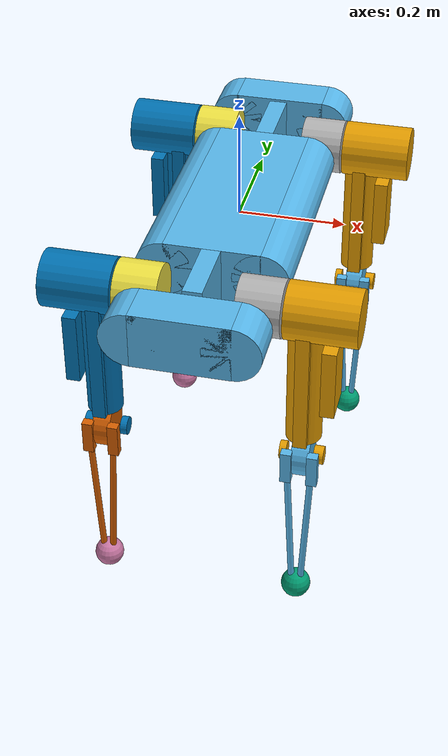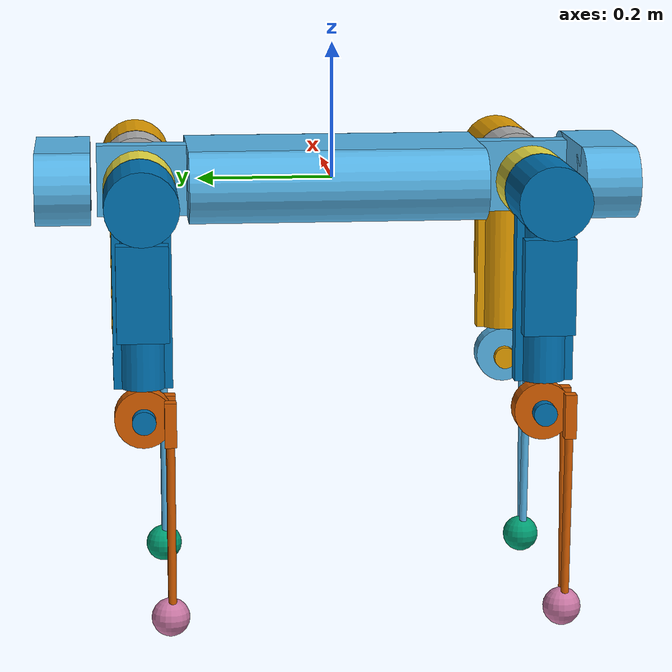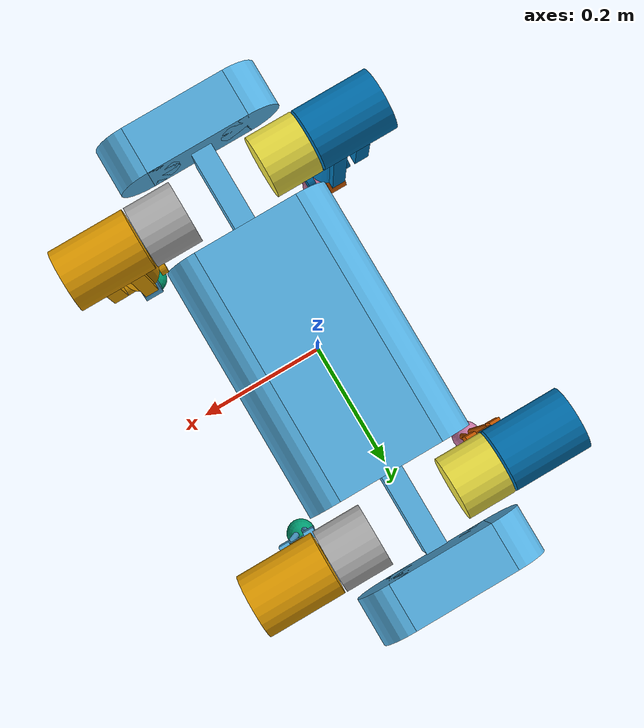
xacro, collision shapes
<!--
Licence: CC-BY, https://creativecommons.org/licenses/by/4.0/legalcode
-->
<?xml version="1.0"?>
<robot name="dogbot" xmlns:xacro="http://ros.org/wiki/xacro">

  <xacro:property name="collisionmesh" value="false" />

  <xacro:property name="bodyheight" value="0.105" />
  <xacro:property name="bodywidth" value="0.282" />
  <xacro:property name="bodylen" value="0.865" />

  <xacro:property name="hipoffsetside" value="0.088" /><!-- offset from body centreline to hip roll -->
  <xacro:property name="hipoffset" value="0.2875" /><!-- offset from body midpoint front/back to hip, axis-to-axis is 575mm -->
  <xacro:property name="legoffsetside" value="0.18675" /><!-- from centreline to centre/origin of upper leg -->
  <xacro:property name="upperleglen" value="0.315" />
  <xacro:property name="lowerleglen" value="0.3" />

  <xacro:property name="kp" value="1000000" />
  <xacro:property name="kd" value="1.0" />
  <!-- degrees to radians -->
  <xacro:property name="d2rad" value="0.017453" />

  <material name="blue">
    <color rgba="0 0 0.8 1"/>
  </material>

  <material name="black">
    <color rgba="0 0 0 1"/>
  </material>

  <material name="white">
    <color rgba="1 1 1 1"/>
  </material>

  <material name="dogbotred">
    <color rgba="1 0 0 1"/>
  </material>

  <material name="dogbotgray">
    <color rgba="0.7 0.7 0.7 1"/>
  </material>

  <!-- Approximate mass distribution with a box
  set ifactor=1 for solid box, =2.0 for a thin shell -->
  <xacro:macro name="default_inertial" params="mass xSize ySize zSize x:=0 y:=0 z:=0 ifactor:=1.0">
    <inertial>
      <mass value="${mass}" />
      <origin xyz="${x} ${y} ${z}" rpy="0 0 0" />
      <inertia
        ixx="${(1.0 / 12.0) * mass * ifactor * (pow(ySize, 2) + pow(zSize, 2))}"
        ixy="0.0"
        ixz="0.0"
        iyy="${(1.0 / 12.0) * mass * ifactor * (pow(xSize, 2) + pow(zSize, 2))}"
        iyz="0.0"
        izz="${(1.0 / 12.0) * mass * ifactor * (pow(xSize, 2) + pow(ySize, 2))}"
      />
    </inertial>
  </xacro:macro>

  <!-- useful for visual-only links; need some inertia on all elements -->
  <xacro:macro name="tinymass" >
    <xacro:default_inertial mass="0.001" xSize="0.001" ySize="0.001" zSize="0.001" />
  </xacro:macro>

  <xacro:macro name="custom_inertial" params="mass x:=0 y:=0 z:=0 r:=0 p:=0 yaw:=0 ixx:=0.01 ixy:=0 ixz:=0 iyy:=0.01 iyz:=0 izz:=0.01">
    <inertial>
      <mass value="${mass}" />
      <origin xyz="${x} ${y} ${z}" rpy="${r} ${p} ${yaw}" />
      <inertia
        ixx="${ixx}" ixy="${ixy}" ixz="${ixz}"
        iyy="${iyy}" iyz="${iyz}" izz="${izz}"
      />
    </inertial>
  </xacro:macro>

  <xacro:macro name="offset_collisionbox" params="l w:=${bodywidth-bodyheight} h:=${bodyheight} x:=0 y:=0 z:=0">
    <collision>
      <origin xyz="${x} ${y} ${z}" rpy="0 0 0" />
      <geometry>
        <box size="${w} ${l} ${h}"/>
      </geometry>
    </collision>
  </xacro:macro>

  <xacro:macro name="offset_cylinder" params="l rad=${bodyheight/2} x:=0 y:=0 z:=0 r:=0 p:=0 yaw:=0" >
    <collision>
      <origin xyz="${x} ${y} ${z}" rpy="${r} ${p} ${yaw}" />
      <geometry>
        <cylinder radius="${rad}" length="${l}"/>
      </geometry>
    </collision>
  </xacro:macro>

  <xacro:macro name="offset_cylinderpair" params="l rad=${bodyheight/2} x:=${(bodywidth/2)-(bodyheight/2)} y:=0">
    <xacro:offset_cylinder l="${l}" rad="${rad}" x="${x}" y="${y}" r="${pi/2}" />
    <xacro:offset_cylinder l="${l}" rad="${rad}" x="${-x}" y="${y}" r="${pi/2}" />
  </xacro:macro>

  <!-- start the robot links -->
  <link name="base_link">
  </link>

  <link name="body">
    <visual>
      <origin xyz="0 0 0" rpy="${-0.5 * pi} 0 0" />
      <geometry>
        <mesh scale="1.0 1.0 1.0" filename="package://project/dogbot_description/meshes/body.dae"/>
      </geometry>
    </visual>

    <xacro:if value="${collisionmesh}">
    <collision>
      <geometry>
        <mesh scale="1.0 1.0 1.0" filename="package://project/dogbot_description/meshes/body.dae"/>
      </geometry>
    </collision>
    </xacro:if>
    <xacro:unless value="${collisionmesh}">
      <!-- central body -->
      <xacro:offset_collisionbox l="0.433" />
      <xacro:offset_cylinderpair l="0.433" />
      <!-- handles -->
      <xacro:offset_collisionbox l="0.132" w="0.035" y="0.2825"/>
      <xacro:offset_collisionbox l="0.132" w="0.035" y="-0.2825"/>
      <!-- ends -->
      <xacro:offset_collisionbox l="0.080" y="0.3975"/>
      <xacro:offset_cylinderpair l="0.080" y="0.3975" />
      <xacro:offset_collisionbox l="0.080" y="-0.3975"/>
      <xacro:offset_cylinderpair l="0.080" y="-0.3975" />
    </xacro:unless>

    <xacro:custom_inertial mass="9.3" ixx="0.41" iyy="0.091" izz="0.482"/>

  </link>

  <joint name="base_joint" type="fixed">
    <axis xyz="0 0 0" rpy="0 0 0" />
    <parent link="base_link"/>
    <child link="body"/>
  </joint>

  <link name="bodytext">
    <visual>
      <origin xyz="0 0 0" rpy="${-0.5 * pi} 0 0" />
      <geometry>
        <mesh scale="1.0 1.0 1.0" filename="package://project/dogbot_description/meshes/bodyTEXT.dae"/>
      </geometry>
    </visual>
    <xacro:tinymass />
  </link>

  <joint name="bodytext_joint" type="fixed">
    <parent link="body"/>
    <child link="bodytext"/>
  </joint>

  <gazebo reference="body">
    <mu1 value="200.0"/>
    <mu2 value="100.0"/>
    <kp value="${kp}" />
    <kd value="${kd}" />

  </gazebo>

  <xacro:macro name="leg" params="prefix suffix reflectx reflecty">

    <link name="${prefix}_${suffix}_hip">
      <visual>
        <origin xyz="0 0 0" rpy="${-0.5 * pi} ${(reflectx-1) * 0.5 * pi} 0" />
        <geometry>
          <mesh scale="1.0 1.0 1.0" filename="package://project/dogbot_description/meshes/hip.dae"/>
        </geometry>
      </visual>

      <xacro:if value="${collisionmesh}">
      <collision>
        <origin xyz="0 0 0" rpy="${-0.5 * pi} ${(reflectx-1) * 0.5 * pi} 0" />
        <geometry>
          <mesh scale="1.0 1.0 1.0" filename="package://project/dogbot_description/meshes/hip.dae"/>
        </geometry>
      </collision>
      </xacro:if>
      <xacro:unless value="${collisionmesh}">
        <xacro:offset_cylinder l="0.08" p="${pi/2}" x="${0.02 * reflectx}"/>
      </xacro:unless>
      <xacro:custom_inertial mass="0.836" x="${0.0074 * reflectx}" ixx="0.00213" iyy="0.00147" izz="0.00172"/>

    </link>

    <!-- roll joint connects the hip to the body -->
    <joint name="${prefix}_${suffix}_roll_joint" type="revolute">
      <axis xyz="0 ${reflecty} 0" rpy="0 0 0" />
      <parent link="body"/>
      <child link="${prefix}_${suffix}_hip"/>
      <origin xyz="${hipoffsetside*reflectx} ${hipoffset * reflecty} 0" rpy="0 0 0"/>
      <limit
         lower ="${-100 * d2rad}"
         upper ="${100 * d2rad}"
         effort="60" velocity="6.0" />
    </joint>

    <link name="${prefix}_${suffix}_upperleg">
      <visual>
        <origin xyz="0 0 0" rpy="${-0.5 * pi} 0 ${ (reflectx -1) * 0.5 * pi}" />
        <geometry>
          <mesh scale="1.0 1.0 1.0" filename="package://project/dogbot_description/meshes/LegUpper_withCover.dae"/>
        </geometry>
      </visual>

      <xacro:if value="${collisionmesh}">
      <collision>
        <origin xyz="0 0 0" rpy="${-0.5 * pi} 0 ${ (reflectx -1) * 0.5 * pi}" />
        <geometry>
          <mesh scale="1.0 1.0 1.0" filename="package://project/dogbot_description/meshes/LegUpper_withCover.dae"/>
        </geometry>
      </collision>
      </xacro:if>
      <xacro:unless value="${collisionmesh}">
        <!-- upper motor housings -->
        <xacro:offset_cylinder l="0.13" p="${pi/2}" x="${0.03 * reflectx}"/>
        <!-- main leg cylinder and belt -->
        <xacro:offset_cylinder l="0.27" rad="0.033" z="-0.135"/>
        <xacro:offset_collisionbox l="0.084" w="0.025" h="0.27" z="-0.135"/>
        <!-- circuit board housing -->
        <xacro:offset_collisionbox l="0.074" w="0.026" h="0.138" x="${0.046 * reflectx}" z="-0.126"/>
        <!-- knee-joint components -->
        <xacro:offset_cylinder l="0.018" rad="0.017" z="${-upperleglen}" p="${pi/2}" x="${0.03 * reflectx}" />
        <xacro:offset_cylinder l="0.013" rad="0.017" z="${-upperleglen}" p="${pi/2}" x="${-0.036 * reflectx}" />
      </xacro:unless>

      <xacro:custom_inertial mass="1.851" x="${0.0418 * reflectx}" z="-0.0517" ixx="0.0238" iyy="0.0252" izz="0.0044"/>
    </link>

    <!-- pitch joint connects hip to upper leg -->
    <joint name="${prefix}_${suffix}_pitch_joint" type="revolute">
      <axis xyz="${reflectx} 0 0" rpy="0 0 0" />
      <parent link="${prefix}_${suffix}_hip"/>
      <child link="${prefix}_${suffix}_upperleg"/>
      <origin xyz="${(legoffsetside - hipoffsetside)*reflectx} 0 0" rpy="0 0 0"/>
      <limit
        lower ="${-0.5 * pi *(reflectx+1) + 0.25 * pi * (reflectx-1)}"
        upper="${0.25 * pi *(reflectx+1) - 0.5 * pi * (reflectx-1)}"
        effort="60"
        velocity="6.0"
      />
    </joint>

    <link name="${prefix}_${suffix}_lowerleg">
      <visual>
        <origin xyz="0 0 0" rpy="${-0.5 * pi} 0 0" />
        <geometry>
          <mesh scale="1.0 1.0 1.0" filename="package://project/dogbot_description/meshes/LegLower_nofoot.dae"/>
        </geometry>
      </visual>

      <xacro:if value="${collisionmesh}">
      <collision>
        <origin xyz="0 0 0" rpy="${-0.5 * pi} 0 0" />
        <geometry>
          <mesh scale="1.0 1.0 1.0" filename="package://project/dogbot_description/meshes/LegLower_nofoot.dae"/>
        </geometry>
      </collision>
      </xacro:if>
      <xacro:unless value="${collisionmesh}">
        <!-- knee assembly -->
        <xacro:offset_cylinder l="0.033" rad="0.042" p="${pi/2}" />
        <xacro:offset_collisionbox l="0.017" w="0.02" h="0.065" x="0.024" y="-0.0375" z="-0.0055" />
        <xacro:offset_collisionbox l="0.017" w="0.02" h="0.065" x="-0.024" y="-0.0375" z="-0.0055" />
        <!-- carbon fibre struts -->
        <xacro:offset_cylinder l="0.290" rad="0.006" p="0.04996" x="0.01575" y="-0.0375" z="-0.145" />
        <xacro:offset_cylinder l="0.290" rad="0.006" p="-0.04996" x="-0.01575" y="-0.0375" z="-0.145" />
      </xacro:unless>

      <xacro:custom_inertial mass="0.302" y="-0.029" z="-0.1439" ixx="0.00527" iyy="0.00509" izz="0.0008"/>
    </link>

    <gazebo reference="${prefix}_${suffix}_lowerleg">
      <mu1 value="2000.0"/>
      <mu2 value="1000.0"/>
      <kp value="${kp}" />
      <kd value="${kd}" />
      <selfCollide value="true" />
    </gazebo>

    <joint name="${prefix}_${suffix}_knee_joint" type="revolute">
      <axis xyz="${-1 * reflectx} 0 0" rpy="${-2*pi} 0 0" />
      <parent link="${prefix}_${suffix}_upperleg"/>
      <child link="${prefix}_${suffix}_lowerleg"/>
      <origin xyz="0 0 ${-upperleglen}" rpy="0 0 0"/>
      <limit
         lower ="${-0.01*(reflectx+1) + 150 * d2rad * (reflectx-1)/2}"
         upper ="${-0.01*(reflectx-1) + 150 * d2rad * (reflectx+1)/2}"
         effort="60" velocity="6.0"
       />
    </joint>

    <link name="${prefix}_${suffix}_foot">
      <visual>
        <origin xyz="0 0 0" rpy="${-0.5 * pi} 0 0" />
        <geometry>
          <mesh scale="1.0 1.0 1.0" filename="package://project/dogbot_description/meshes/foot.dae"/>
        </geometry>
      </visual>

      <xacro:if value="${collisionmesh}">
      <collision>
        <origin xyz="0 0 0" rpy="${-0.5 * pi} 0 0" />
        <geometry>
          <mesh scale="1.0 1.0 1.0" filename="package://project/dogbot_description/meshes/foot.dae"/>
        </geometry>
      </collision>
      </xacro:if>
      <xacro:unless value="${collisionmesh}">
        <collision>
          <origin xyz="0 -0.035 ${-lowerleglen}" rpy="0 0 0" />
          <geometry>
            <sphere radius="0.028" />
          </geometry>
        </collision>
      </xacro:unless>
      <!-- foot mass is included in lower leg link -->
      <xacro:tinymass />
    </link>

    <joint name="${prefix}_${suffix}_foot_joint" type="fixed">
      <axis xyz="0 1 0" rpy="0 0 0" />
      <parent link="${prefix}_${suffix}_lowerleg"/>
      <child link="${prefix}_${suffix}_foot"/>
      <origin xyz="0 0 0" rpy="0 0 0"/>
    </joint>

    <gazebo reference="${prefix}_${suffix}_foot">
      <mu1 value="2000.0"/>
      <mu2 value="1000.0"/>
      <kp value="${kp}" />
      <kd value="${kd}" />

 <!-- Contact Sensor -->
      <sensor name="${prefix}_${suffix}_contactsensor_sensor" type="contact">
        <always_on>true</always_on>
        <contact>
          <collision>${prefix}_${suffix}_lowerleg_fixed_joint_lump__${prefix}_${suffix}_foot_collision_5</collision>
        </contact>
        <plugin name="${prefix}_${suffix}_foot_plugin" filename="libgazebo_ros_bumper.so">
          <bumperTopicName>${prefix}_${suffix}_contactsensor_state</bumperTopicName>
          <frameName>world</frameName>
        </plugin>
      </sensor>

 </gazebo>

    <transmission name="${prefix}_${suffix}_roll_transmition" >
      <type>transmission_interface/SimpleTransmission</type>
      <joint name="${prefix}_${suffix}_roll_joint">
        <hardwareInterface>hardware_interface/EffortJointInterface</hardwareInterface>
      </joint>
      <actuator name="${prefix}_${suffix}_roll_motor" >
        <hardwareInterface>hardware_interface/EffortJointInterface</hardwareInterface>
        <mechanicalReduction>1</mechanicalReduction>
      </actuator>
    </transmission>

    <transmission name="${prefix}_${suffix}_pitch_transmition" >
      <type>transmission_interface/SimpleTransmission</type>
      <joint name="${prefix}_${suffix}_pitch_joint">
        <hardwareInterface>hardware_interface/EffortJointInterface</hardwareInterface>
      </joint>
      <actuator name="${prefix}_${suffix}_pitch_motor" >
        <hardwareInterface>hardware_interface/EffortJointInterface</hardwareInterface>
        <mechanicalReduction>1</mechanicalReduction>
      </actuator>
    </transmission>

    <transmission name="${prefix}_${suffix}_knee_transmition" >
      <type>transmission_interface/SimpleTransmission</type>
      <joint name="${prefix}_${suffix}_knee_joint">
        <hardwareInterface>hardware_interface/EffortJointInterface</hardwareInterface>
      </joint>
      <actuator name="${prefix}_${suffix}_knee_motor" >
        <hardwareInterface>hardware_interface/EffortJointInterface</hardwareInterface>
        <mechanicalReduction>1</mechanicalReduction>
      </actuator>
    </transmission>

  </xacro:macro>

  <xacro:leg prefix="back" suffix="left" reflectx="-1"  reflecty="-1"/>
  <xacro:leg prefix="back" suffix="right"  reflectx="1" reflecty="-1" />
  <xacro:leg prefix="front"  suffix="left" reflectx="-1"  reflecty="1"/>
  <xacro:leg prefix="front"  suffix="right"  reflectx="1" reflecty="1" />

  <gazebo>
    <plugin name="imu_plugin" filename="libhector_gazebo_ros_imu.so">
      <alwaysOn>true</alwaysOn>
      <bodyName>body</bodyName>
      <robotNamespace>dogbot</robotNamespace>
      <topicName>imu</topicName>
      <serviceName>imu_service</serviceName>
      <gaussianNoise>0.0</gaussianNoise>
      <updateRate>20.0</updateRate>
    </plugin>

    <plugin name="gps_plugin" filename="libhector_gazebo_ros_gps.so">
      <alwaysOn>true</alwaysOn>
      <bodyName>body</bodyName>
      <robotNamespace>dogbot</robotNamespace>
      <topicName>gps</topicName>
      <serviceName>imu_service</serviceName>
      <updateRate>100</updateRate>
      <referenceLatitude>51.5</referenceLatitude>
      <referenceLongitude>0.1278</referenceLongitude>
    </plugin>
  </gazebo>

  <!-- Gazebo plugin for ROS Control -->
  <gazebo>
    <plugin name="gazebo_ros_control" filename="libgazebo_ros_control.so">
      <robotNamespace>/dogbot</robotNamespace>
    </plugin>
  </gazebo>

  <gazebo reference="base_link">
    <sensor type="camera" name="camera1">
      <pose>0 -0.37 0 0 0 -1.5707</pose>
      <update_rate>30.0</update_rate>
      <camera name="head">
        <horizontal_fov>1.3962634</horizontal_fov>
        <image>
          <width>1280</width>
          <height>720</height>
          <format>R8G8B8</format>
        </image>
        <clip>
          <near>0.02</near>
          <far>300</far>
        </clip>
        <noise>
          <type>gaussian</type>
          <mean>0.0</mean>
          <stddev>0.007</stddev>
        </noise>
      </camera>
      <plugin name="camera_controller" filename="libgazebo_ros_camera.so">
        <alwaysOn>true</alwaysOn>
        <updateRate>0.0</updateRate>
        <cameraName>/camera</cameraName>
        <imageTopicName>image_raw</imageTopicName>
        <cameraInfoTopicName>camera_info</cameraInfoTopicName>
        <frameName>camera_link</frameName>
        <hackBaseline>0.07</hackBaseline>
        <distortionK1>0.0</distortionK1>
        <distortionK2>0.0</distortionK2>
        <distortionK3>0.0</distortionK3>
        <distortionT1>0.0</distortionT1>
        <distortionT2>0.0</distortionT2>
      </plugin>
    </sensor>
  </gazebo>

  <joint name="hokuyo_joint" type="fixed">
        <axis xyz="0 1 0" />
        <origin xyz="0 -0.15 0.15" rpy="0 0 +1.57"/>
        <parent link="base_link"/>
        <child link="hokuyo_link"/>
    </joint>

    <!-- Hokuyo Laser -->
    <link name="hokuyo_link">

        <visual>
            <origin xyz="0 0 -0.05" rpy="0 0 0"/>
            <geometry>
                <mesh filename="file://$(find project)/dogbot_description/meshes/hokuyo.dae"/>
            </geometry>
        </visual>

        <inertial>
            <mass value="1e-5" />
            <origin xyz="0 0 0" rpy="0 0 0"/>
            <inertia ixx="1e-6" ixy="0" ixz="0" iyy="1e-6" iyz="0" izz="1e-6" />
        </inertial>
    </link>

  <gazebo reference="hokuyo_link">
  	 <sensor type="ray" name="head_hokuyo_sensor">
      <pose>0 0 0 0 0 0</pose>
      <visualize>false</visualize>
      <update_rate>40</update_rate>
      <ray>
        <scan>
          <horizontal>
            <samples>360</samples>
            <resolution>1</resolution>
           <min_angle>-3.14159</min_angle>
            <max_angle>3.14159</max_angle>
          </horizontal>
        </scan>
        <range>
          <min>0.4</min>
          <max>2.5</max>
          <resolution>0.01</resolution>
        </range>
        <noise>
          <type>gaussian</type>
          <mean>0.0</mean>
          <stddev>0.01</stddev>
        </noise>
      </ray>
      <plugin name="gazebo_ros_head_hokuyo_controller" filename="libgazebo_ros_laser.so">
        <topicName>/laser/scan</topicName>
        <frameName>hokuyo_link</frameName>
      </plugin>
    </sensor>
  </gazebo>

  <gazebo>
		<plugin name="force_plugin" filename="libforce_plugin.so" >
		</plugin>

	</gazebo>
</robot>
